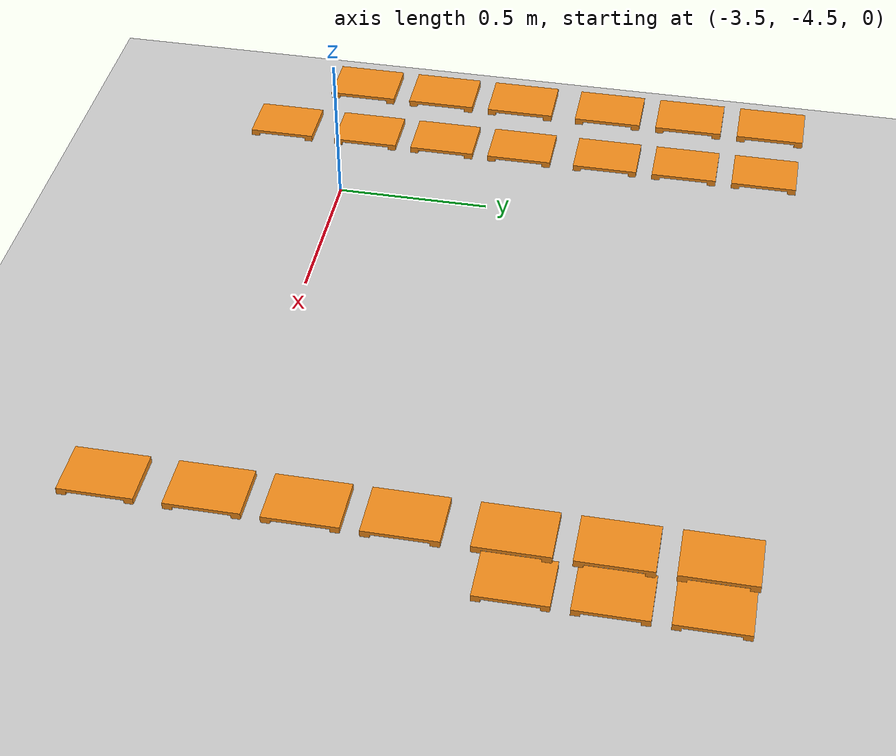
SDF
<sdf version="1.7">
 <world name="default">
  <model name="ground_plane">
   <static>1</static>
   <link name="link">
    <collision name="collision">
     <geometry><plane><normal>0 0 1</normal><size>100 100</size></plane></geometry>
     <surface>
      <contact><collide_bitmask>65535</collide_bitmask></contact>
      <friction><ode><mu>1</mu><mu2>1</mu2></ode></friction>
     </surface>
    </collision>
    <visual name="visual">
     <cast_shadows>0</cast_shadows>
     <geometry><plane><normal>0 0 1</normal><size>100 100</size></plane></geometry>
     <material>
      <script><uri>file://media/materials/scripts/gazebo.material</uri><name>Gazebo/Grey</name></script>
     </material>
    </visual>
   </link>
  </model>
  <model name="pallet_97">
   <pose>-3.39642 -3.088 0.511025 0 -0.012521 -3e-06</pose>
   <link name="link">
    <inertial>
     <pose>0 0 0 0 -0 1.571</pose>
     <inertia>
      <ixx>0.00220983</ixx>
      <ixy>0</ixy>
      <ixz>0</ixz>
      <iyy>0.00128087</iyy>
      <iyz>0</iyz>
      <izz>0.00244903</izz>
     </inertia>
     <mass>0.01</mass>
    </inertial>
    <visual name="visual1">
     <cast_shadows>0</cast_shadows>
     <geometry><mesh><uri>model://pallet/meshes/pallet.stl</uri></mesh></geometry>
     <material>
      <script><uri>file://media/materials/scripts/gazebo.material</uri><name>Gazebo/Orange</name></script>
      <shader type="pixel"><normal_map>__default__</normal_map></shader>
      <emissive>0 0 0 1</emissive>
     </material>
     <pose>0 0 -0 0 -0 1.571</pose>
    </visual>
    <collision name="collision_0">
     <pose>0 0 0 0 -0 1.571</pose>
     <geometry><mesh><uri>model://pallet/meshes/pallet.stl</uri></mesh></geometry>
     <surface>
      <friction>
       <ode><mu>1</mu><mu2>1</mu2><fdir1>0 0 0</fdir1><slip1>0</slip1><slip2>0</slip2></ode>
       <torsional>
        <coefficient>1</coefficient>
        <patch_radius>0</patch_radius>
        <surface_radius>0</surface_radius>
        <use_patch_radius>1</use_patch_radius>
        <ode><slip>0</slip></ode>
       </torsional>
      </friction>
      <bounce><restitution_coefficient>0</restitution_coefficient><threshold>1e+06</threshold></bounce>
      <contact>
       <collide_without_contact>0</collide_without_contact>
       <collide_without_contact_bitmask>1</collide_without_contact_bitmask>
       <collide_bitmask>1</collide_bitmask>
       <ode>
        <soft_cfm>0</soft_cfm>
        <soft_erp>0.2</soft_erp>
        <kp>1e+13</kp>
        <kd>1</kd>
        <max_vel>0.01</max_vel>
        <min_depth>0</min_depth>
       </ode>
       <bullet>
        <split_impulse>1</split_impulse>
        <split_impulse_penetration_threshold>-0.01</split_impulse_penetration_threshold>
        <soft_cfm>0</soft_cfm>
        <soft_erp>0.2</soft_erp>
        <kp>1e+13</kp>
        <kd>1</kd>
       </bullet>
      </contact>
     </surface>
    </collision>
   </link>
   <static>0</static>
  </model>
  <model name="pallet_98">
   <pose>-3.39642 -3.338 0.511021 4.2e-05 -0.012513 3e-06</pose>
   <link name="link">
    <inertial>
     <pose>0 0 0 0 -0 1.571</pose>
     <inertia>
      <ixx>0.00220983</ixx>
      <ixy>0</ixy>
      <ixz>0</ixz>
      <iyy>0.00128087</iyy>
      <iyz>0</iyz>
      <izz>0.00244903</izz>
     </inertia>
     <mass>0.01</mass>
    </inertial>
    <visual name="visual1">
     <cast_shadows>0</cast_shadows>
     <geometry><mesh><uri>model://pallet/meshes/pallet.stl</uri></mesh></geometry>
     <material>
      <script><uri>file://media/materials/scripts/gazebo.material</uri><name>Gazebo/Orange</name></script>
      <shader type="pixel"><normal_map>__default__</normal_map></shader>
      <emissive>0 0 0 1</emissive>
     </material>
     <pose>0 0 -0 0 -0 1.571</pose>
    </visual>
    <collision name="collision_0">
     <pose>0 0 0 0 -0 1.571</pose>
     <geometry><mesh><uri>model://pallet/meshes/pallet.stl</uri></mesh></geometry>
     <surface>
      <friction>
       <ode><mu>1</mu><mu2>1</mu2><fdir1>0 0 0</fdir1><slip1>0</slip1><slip2>0</slip2></ode>
       <torsional>
        <coefficient>1</coefficient>
        <patch_radius>0</patch_radius>
        <surface_radius>0</surface_radius>
        <use_patch_radius>1</use_patch_radius>
        <ode><slip>0</slip></ode>
       </torsional>
      </friction>
      <bounce><restitution_coefficient>0</restitution_coefficient><threshold>1e+06</threshold></bounce>
      <contact>
       <collide_without_contact>0</collide_without_contact>
       <collide_without_contact_bitmask>1</collide_without_contact_bitmask>
       <collide_bitmask>1</collide_bitmask>
       <ode>
        <soft_cfm>0</soft_cfm>
        <soft_erp>0.2</soft_erp>
        <kp>1e+13</kp>
        <kd>1</kd>
        <max_vel>0.01</max_vel>
        <min_depth>0</min_depth>
       </ode>
       <bullet>
        <split_impulse>1</split_impulse>
        <split_impulse_penetration_threshold>-0.01</split_impulse_penetration_threshold>
        <soft_cfm>0</soft_cfm>
        <soft_erp>0.2</soft_erp>
        <kp>1e+13</kp>
        <kd>1</kd>
       </bullet>
      </contact>
     </surface>
    </collision>
   </link>
   <static>0</static>
  </model>
  <model name="pallet_99">
   <pose>-3.39642 -3.588 0.51102 4.3e-05 -0.012511 3e-06</pose>
   <link name="link">
    <inertial>
     <pose>0 0 0 0 -0 1.571</pose>
     <inertia>
      <ixx>0.00220983</ixx>
      <ixy>0</ixy>
      <ixz>0</ixz>
      <iyy>0.00128087</iyy>
      <iyz>0</iyz>
      <izz>0.00244903</izz>
     </inertia>
     <mass>0.01</mass>
    </inertial>
    <visual name="visual1">
     <cast_shadows>0</cast_shadows>
     <geometry><mesh><uri>model://pallet/meshes/pallet.stl</uri></mesh></geometry>
     <material>
      <script><uri>file://media/materials/scripts/gazebo.material</uri><name>Gazebo/Orange</name></script>
      <shader type="pixel"><normal_map>__default__</normal_map></shader>
      <emissive>0 0 0 1</emissive>
     </material>
     <pose>0 0 -0 0 -0 1.571</pose>
    </visual>
    <collision name="collision_0">
     <pose>0 0 0 0 -0 1.571</pose>
     <geometry><mesh><uri>model://pallet/meshes/pallet.stl</uri></mesh></geometry>
     <surface>
      <friction>
       <ode><mu>1</mu><mu2>1</mu2><fdir1>0 0 0</fdir1><slip1>0</slip1><slip2>0</slip2></ode>
       <torsional>
        <coefficient>1</coefficient>
        <patch_radius>0</patch_radius>
        <surface_radius>0</surface_radius>
        <use_patch_radius>1</use_patch_radius>
        <ode><slip>0</slip></ode>
       </torsional>
      </friction>
      <bounce><restitution_coefficient>0</restitution_coefficient><threshold>1e+06</threshold></bounce>
      <contact>
       <collide_without_contact>0</collide_without_contact>
       <collide_without_contact_bitmask>1</collide_without_contact_bitmask>
       <collide_bitmask>1</collide_bitmask>
       <ode>
        <soft_cfm>0</soft_cfm>
        <soft_erp>0.2</soft_erp>
        <kp>1e+13</kp>
        <kd>1</kd>
        <max_vel>0.01</max_vel>
        <min_depth>0</min_depth>
       </ode>
       <bullet>
        <split_impulse>1</split_impulse>
        <split_impulse_penetration_threshold>-0.01</split_impulse_penetration_threshold>
        <soft_cfm>0</soft_cfm>
        <soft_erp>0.2</soft_erp>
        <kp>1e+13</kp>
        <kd>1</kd>
       </bullet>
      </contact>
     </surface>
    </collision>
   </link>
   <static>0</static>
  </model>
  <model name="pallet_100">
   <pose>-3.39642 -3.8625 0.511023 1e-06 -0.01252 4e-06</pose>
   <link name="link">
    <inertial>
     <pose>0 0 0 0 -0 1.571</pose>
     <inertia>
      <ixx>0.00220983</ixx>
      <ixy>0</ixy>
      <ixz>0</ixz>
      <iyy>0.00128087</iyy>
      <iyz>0</iyz>
      <izz>0.00244903</izz>
     </inertia>
     <mass>0.01</mass>
    </inertial>
    <visual name="visual1">
     <cast_shadows>0</cast_shadows>
     <geometry><mesh><uri>model://pallet/meshes/pallet.stl</uri></mesh></geometry>
     <material>
      <script><uri>file://media/materials/scripts/gazebo.material</uri><name>Gazebo/Orange</name></script>
      <shader type="pixel"><normal_map>__default__</normal_map></shader>
      <emissive>0 0 0 1</emissive>
     </material>
     <pose>0 0 -0 0 -0 1.571</pose>
    </visual>
    <collision name="collision_0">
     <pose>0 0 0 0 -0 1.571</pose>
     <geometry><mesh><uri>model://pallet/meshes/pallet.stl</uri></mesh></geometry>
     <surface>
      <friction>
       <ode><mu>1</mu><mu2>1</mu2><fdir1>0 0 0</fdir1><slip1>0</slip1><slip2>0</slip2></ode>
       <torsional>
        <coefficient>1</coefficient>
        <patch_radius>0</patch_radius>
        <surface_radius>0</surface_radius>
        <use_patch_radius>1</use_patch_radius>
        <ode><slip>0</slip></ode>
       </torsional>
      </friction>
      <bounce><restitution_coefficient>0</restitution_coefficient><threshold>1e+06</threshold></bounce>
      <contact>
       <collide_without_contact>0</collide_without_contact>
       <collide_without_contact_bitmask>1</collide_without_contact_bitmask>
       <collide_bitmask>1</collide_bitmask>
       <ode>
        <soft_cfm>0</soft_cfm>
        <soft_erp>0.2</soft_erp>
        <kp>1e+13</kp>
        <kd>1</kd>
        <max_vel>0.01</max_vel>
        <min_depth>0</min_depth>
       </ode>
       <bullet>
        <split_impulse>1</split_impulse>
        <split_impulse_penetration_threshold>-0.01</split_impulse_penetration_threshold>
        <soft_cfm>0</soft_cfm>
        <soft_erp>0.2</soft_erp>
        <kp>1e+13</kp>
        <kd>1</kd>
       </bullet>
      </contact>
     </surface>
    </collision>
   </link>
   <static>0</static>
  </model>
  <model name="pallet_101">
   <pose>-3.39642 -4.1125 0.51102 3e-05 -0.012513 2e-06</pose>
   <link name="link">
    <inertial>
     <pose>0 0 0 0 -0 1.571</pose>
     <inertia>
      <ixx>0.00220983</ixx>
      <ixy>0</ixy>
      <ixz>0</ixz>
      <iyy>0.00128087</iyy>
      <iyz>0</iyz>
      <izz>0.00244903</izz>
     </inertia>
     <mass>0.01</mass>
    </inertial>
    <visual name="visual1">
     <cast_shadows>0</cast_shadows>
     <geometry><mesh><uri>model://pallet/meshes/pallet.stl</uri></mesh></geometry>
     <material>
      <script><uri>file://media/materials/scripts/gazebo.material</uri><name>Gazebo/Orange</name></script>
      <shader type="pixel"><normal_map>__default__</normal_map></shader>
      <emissive>0 0 0 1</emissive>
     </material>
     <pose>0 0 -0 0 -0 1.571</pose>
    </visual>
    <collision name="collision_0">
     <pose>0 0 0 0 -0 1.571</pose>
     <geometry><mesh><uri>model://pallet/meshes/pallet.stl</uri></mesh></geometry>
     <surface>
      <friction>
       <ode><mu>1</mu><mu2>1</mu2><fdir1>0 0 0</fdir1><slip1>0</slip1><slip2>0</slip2></ode>
       <torsional>
        <coefficient>1</coefficient>
        <patch_radius>0</patch_radius>
        <surface_radius>0</surface_radius>
        <use_patch_radius>1</use_patch_radius>
        <ode><slip>0</slip></ode>
       </torsional>
      </friction>
      <bounce><restitution_coefficient>0</restitution_coefficient><threshold>1e+06</threshold></bounce>
      <contact>
       <collide_without_contact>0</collide_without_contact>
       <collide_without_contact_bitmask>1</collide_without_contact_bitmask>
       <collide_bitmask>1</collide_bitmask>
       <ode>
        <soft_cfm>0</soft_cfm>
        <soft_erp>0.2</soft_erp>
        <kp>1e+13</kp>
        <kd>1</kd>
        <max_vel>0.01</max_vel>
        <min_depth>0</min_depth>
       </ode>
       <bullet>
        <split_impulse>1</split_impulse>
        <split_impulse_penetration_threshold>-0.01</split_impulse_penetration_threshold>
        <soft_cfm>0</soft_cfm>
        <soft_erp>0.2</soft_erp>
        <kp>1e+13</kp>
        <kd>1</kd>
       </bullet>
      </contact>
     </surface>
    </collision>
   </link>
   <static>0</static>
  </model>
  <model name="pallet_102">
   <pose>-3.39641 -4.3625 0.51102 2.3e-05 -0.012514 1e-05</pose>
   <link name="link">
    <inertial>
     <pose>0 0 0 0 -0 1.571</pose>
     <inertia>
      <ixx>0.00220983</ixx>
      <ixy>0</ixy>
      <ixz>0</ixz>
      <iyy>0.00128087</iyy>
      <iyz>0</iyz>
      <izz>0.00244903</izz>
     </inertia>
     <mass>0.01</mass>
    </inertial>
    <visual name="visual1">
     <cast_shadows>0</cast_shadows>
     <geometry><mesh><uri>model://pallet/meshes/pallet.stl</uri></mesh></geometry>
     <material>
      <script><uri>file://media/materials/scripts/gazebo.material</uri><name>Gazebo/Orange</name></script>
      <shader type="pixel"><normal_map>__default__</normal_map></shader>
      <emissive>0 0 0 1</emissive>
     </material>
     <pose>0 0 -0 0 -0 1.571</pose>
    </visual>
    <collision name="collision_0">
     <pose>0 0 0 0 -0 1.571</pose>
     <geometry><mesh><uri>model://pallet/meshes/pallet.stl</uri></mesh></geometry>
     <surface>
      <friction>
       <ode><mu>1</mu><mu2>1</mu2><fdir1>0 0 0</fdir1><slip1>0</slip1><slip2>0</slip2></ode>
       <torsional>
        <coefficient>1</coefficient>
        <patch_radius>0</patch_radius>
        <surface_radius>0</surface_radius>
        <use_patch_radius>1</use_patch_radius>
        <ode><slip>0</slip></ode>
       </torsional>
      </friction>
      <bounce><restitution_coefficient>0</restitution_coefficient><threshold>1e+06</threshold></bounce>
      <contact>
       <collide_without_contact>0</collide_without_contact>
       <collide_without_contact_bitmask>1</collide_without_contact_bitmask>
       <collide_bitmask>1</collide_bitmask>
       <ode>
        <soft_cfm>0</soft_cfm>
        <soft_erp>0.2</soft_erp>
        <kp>1e+13</kp>
        <kd>1</kd>
        <max_vel>0.01</max_vel>
        <min_depth>0</min_depth>
       </ode>
       <bullet>
        <split_impulse>1</split_impulse>
        <split_impulse_penetration_threshold>-0.01</split_impulse_penetration_threshold>
        <soft_cfm>0</soft_cfm>
        <soft_erp>0.2</soft_erp>
        <kp>1e+13</kp>
        <kd>1</kd>
       </bullet>
      </contact>
     </surface>
    </collision>
   </link>
   <static>0</static>
  </model>
  <model name="pallet_109">
   <pose>-3.39417 -3.088 0.331038 4e-06 -0.012516 -3e-06</pose>
   <link name="link">
    <inertial>
     <pose>0 0 0 0 -0 1.571</pose>
     <inertia>
      <ixx>0.00220983</ixx>
      <ixy>0</ixy>
      <ixz>0</ixz>
      <iyy>0.00128087</iyy>
      <iyz>0</iyz>
      <izz>0.00244903</izz>
     </inertia>
     <mass>0.01</mass>
    </inertial>
    <visual name="visual1">
     <cast_shadows>0</cast_shadows>
     <geometry><mesh><uri>model://pallet/meshes/pallet.stl</uri></mesh></geometry>
     <material>
      <script><uri>file://media/materials/scripts/gazebo.material</uri><name>Gazebo/Orange</name></script>
      <shader type="pixel"><normal_map>__default__</normal_map></shader>
      <emissive>0 0 0 1</emissive>
     </material>
     <pose>0 0 -0 0 -0 1.571</pose>
    </visual>
    <collision name="collision_0">
     <pose>0 0 0 0 -0 1.571</pose>
     <geometry><mesh><uri>model://pallet/meshes/pallet.stl</uri></mesh></geometry>
     <surface>
      <friction>
       <ode><mu>1</mu><mu2>1</mu2><fdir1>0 0 0</fdir1><slip1>0</slip1><slip2>0</slip2></ode>
       <torsional>
        <coefficient>1</coefficient>
        <patch_radius>0</patch_radius>
        <surface_radius>0</surface_radius>
        <use_patch_radius>1</use_patch_radius>
        <ode><slip>0</slip></ode>
       </torsional>
      </friction>
      <bounce><restitution_coefficient>0</restitution_coefficient><threshold>1e+06</threshold></bounce>
      <contact>
       <collide_without_contact>0</collide_without_contact>
       <collide_without_contact_bitmask>1</collide_without_contact_bitmask>
       <collide_bitmask>1</collide_bitmask>
       <ode>
        <soft_cfm>0</soft_cfm>
        <soft_erp>0.2</soft_erp>
        <kp>1e+13</kp>
        <kd>1</kd>
        <max_vel>0.01</max_vel>
        <min_depth>0</min_depth>
       </ode>
       <bullet>
        <split_impulse>1</split_impulse>
        <split_impulse_penetration_threshold>-0.01</split_impulse_penetration_threshold>
        <soft_cfm>0</soft_cfm>
        <soft_erp>0.2</soft_erp>
        <kp>1e+13</kp>
        <kd>1</kd>
       </bullet>
      </contact>
     </surface>
    </collision>
   </link>
   <static>0</static>
  </model>
  <model name="pallet_110">
   <pose>-3.39417 -3.338 0.331035 4.3e-05 -0.012514 5e-06</pose>
   <link name="link">
    <inertial>
     <pose>0 0 0 0 -0 1.571</pose>
     <inertia>
      <ixx>0.00220983</ixx>
      <ixy>0</ixy>
      <ixz>0</ixz>
      <iyy>0.00128087</iyy>
      <iyz>0</iyz>
      <izz>0.00244903</izz>
     </inertia>
     <mass>0.01</mass>
    </inertial>
    <visual name="visual1">
     <cast_shadows>0</cast_shadows>
     <geometry><mesh><uri>model://pallet/meshes/pallet.stl</uri></mesh></geometry>
     <material>
      <script><uri>file://media/materials/scripts/gazebo.material</uri><name>Gazebo/Orange</name></script>
      <shader type="pixel"><normal_map>__default__</normal_map></shader>
      <emissive>0 0 0 1</emissive>
     </material>
     <pose>0 0 -0 0 -0 1.571</pose>
    </visual>
    <collision name="collision_0">
     <pose>0 0 0 0 -0 1.571</pose>
     <geometry><mesh><uri>model://pallet/meshes/pallet.stl</uri></mesh></geometry>
     <surface>
      <friction>
       <ode><mu>1</mu><mu2>1</mu2><fdir1>0 0 0</fdir1><slip1>0</slip1><slip2>0</slip2></ode>
       <torsional>
        <coefficient>1</coefficient>
        <patch_radius>0</patch_radius>
        <surface_radius>0</surface_radius>
        <use_patch_radius>1</use_patch_radius>
        <ode><slip>0</slip></ode>
       </torsional>
      </friction>
      <bounce><restitution_coefficient>0</restitution_coefficient><threshold>1e+06</threshold></bounce>
      <contact>
       <collide_without_contact>0</collide_without_contact>
       <collide_without_contact_bitmask>1</collide_without_contact_bitmask>
       <collide_bitmask>1</collide_bitmask>
       <ode>
        <soft_cfm>0</soft_cfm>
        <soft_erp>0.2</soft_erp>
        <kp>1e+13</kp>
        <kd>1</kd>
        <max_vel>0.01</max_vel>
        <min_depth>0</min_depth>
       </ode>
       <bullet>
        <split_impulse>1</split_impulse>
        <split_impulse_penetration_threshold>-0.01</split_impulse_penetration_threshold>
        <soft_cfm>0</soft_cfm>
        <soft_erp>0.2</soft_erp>
        <kp>1e+13</kp>
        <kd>1</kd>
       </bullet>
      </contact>
     </surface>
    </collision>
   </link>
   <static>0</static>
  </model>
  <model name="pallet_111">
   <pose>-3.39417 -3.588 0.331033 4.5e-05 -0.012512 4e-06</pose>
   <link name="link">
    <inertial>
     <pose>0 0 0 0 -0 1.571</pose>
     <inertia>
      <ixx>0.00220983</ixx>
      <ixy>0</ixy>
      <ixz>0</ixz>
      <iyy>0.00128087</iyy>
      <iyz>0</iyz>
      <izz>0.00244903</izz>
     </inertia>
     <mass>0.01</mass>
    </inertial>
    <visual name="visual1">
     <cast_shadows>0</cast_shadows>
     <geometry><mesh><uri>model://pallet/meshes/pallet.stl</uri></mesh></geometry>
     <material>
      <script><uri>file://media/materials/scripts/gazebo.material</uri><name>Gazebo/Orange</name></script>
      <shader type="pixel"><normal_map>__default__</normal_map></shader>
      <emissive>0 0 0 1</emissive>
     </material>
     <pose>0 0 -0 0 -0 1.571</pose>
    </visual>
    <collision name="collision_0">
     <pose>0 0 0 0 -0 1.571</pose>
     <geometry><mesh><uri>model://pallet/meshes/pallet.stl</uri></mesh></geometry>
     <surface>
      <friction>
       <ode><mu>1</mu><mu2>1</mu2><fdir1>0 0 0</fdir1><slip1>0</slip1><slip2>0</slip2></ode>
       <torsional>
        <coefficient>1</coefficient>
        <patch_radius>0</patch_radius>
        <surface_radius>0</surface_radius>
        <use_patch_radius>1</use_patch_radius>
        <ode><slip>0</slip></ode>
       </torsional>
      </friction>
      <bounce><restitution_coefficient>0</restitution_coefficient><threshold>1e+06</threshold></bounce>
      <contact>
       <collide_without_contact>0</collide_without_contact>
       <collide_without_contact_bitmask>1</collide_without_contact_bitmask>
       <collide_bitmask>1</collide_bitmask>
       <ode>
        <soft_cfm>0</soft_cfm>
        <soft_erp>0.2</soft_erp>
        <kp>1e+13</kp>
        <kd>1</kd>
        <max_vel>0.01</max_vel>
        <min_depth>0</min_depth>
       </ode>
       <bullet>
        <split_impulse>1</split_impulse>
        <split_impulse_penetration_threshold>-0.01</split_impulse_penetration_threshold>
        <soft_cfm>0</soft_cfm>
        <soft_erp>0.2</soft_erp>
        <kp>1e+13</kp>
        <kd>1</kd>
       </bullet>
      </contact>
     </surface>
    </collision>
   </link>
   <static>0</static>
  </model>
  <model name="pallet_112">
   <pose>-3.39417 -3.8625 0.331037 7e-06 -0.012521 4e-06</pose>
   <link name="link">
    <inertial>
     <pose>0 0 0 0 -0 1.571</pose>
     <inertia>
      <ixx>0.00220983</ixx>
      <ixy>0</ixy>
      <ixz>0</ixz>
      <iyy>0.00128087</iyy>
      <iyz>0</iyz>
      <izz>0.00244903</izz>
     </inertia>
     <mass>0.01</mass>
    </inertial>
    <visual name="visual1">
     <cast_shadows>0</cast_shadows>
     <geometry><mesh><uri>model://pallet/meshes/pallet.stl</uri></mesh></geometry>
     <material>
      <script><uri>file://media/materials/scripts/gazebo.material</uri><name>Gazebo/Orange</name></script>
      <shader type="pixel"><normal_map>__default__</normal_map></shader>
      <emissive>0 0 0 1</emissive>
     </material>
     <pose>0 0 -0 0 -0 1.571</pose>
    </visual>
    <collision name="collision_0">
     <pose>0 0 0 0 -0 1.571</pose>
     <geometry><mesh><uri>model://pallet/meshes/pallet.stl</uri></mesh></geometry>
     <surface>
      <friction>
       <ode><mu>1</mu><mu2>1</mu2><fdir1>0 0 0</fdir1><slip1>0</slip1><slip2>0</slip2></ode>
       <torsional>
        <coefficient>1</coefficient>
        <patch_radius>0</patch_radius>
        <surface_radius>0</surface_radius>
        <use_patch_radius>1</use_patch_radius>
        <ode><slip>0</slip></ode>
       </torsional>
      </friction>
      <bounce><restitution_coefficient>0</restitution_coefficient><threshold>1e+06</threshold></bounce>
      <contact>
       <collide_without_contact>0</collide_without_contact>
       <collide_without_contact_bitmask>1</collide_without_contact_bitmask>
       <collide_bitmask>1</collide_bitmask>
       <ode>
        <soft_cfm>0</soft_cfm>
        <soft_erp>0.2</soft_erp>
        <kp>1e+13</kp>
        <kd>1</kd>
        <max_vel>0.01</max_vel>
        <min_depth>0</min_depth>
       </ode>
       <bullet>
        <split_impulse>1</split_impulse>
        <split_impulse_penetration_threshold>-0.01</split_impulse_penetration_threshold>
        <soft_cfm>0</soft_cfm>
        <soft_erp>0.2</soft_erp>
        <kp>1e+13</kp>
        <kd>1</kd>
       </bullet>
      </contact>
     </surface>
    </collision>
   </link>
   <static>0</static>
  </model>
  <model name="pallet_113">
   <pose>-3.39416 -4.1125 0.331034 2.6e-05 -0.012514 7e-06</pose>
   <link name="link">
    <inertial>
     <pose>0 0 0 0 -0 1.571</pose>
     <inertia>
      <ixx>0.00220983</ixx>
      <ixy>0</ixy>
      <ixz>0</ixz>
      <iyy>0.00128087</iyy>
      <iyz>0</iyz>
      <izz>0.00244903</izz>
     </inertia>
     <mass>0.01</mass>
    </inertial>
    <visual name="visual1">
     <cast_shadows>0</cast_shadows>
     <geometry><mesh><uri>model://pallet/meshes/pallet.stl</uri></mesh></geometry>
     <material>
      <script><uri>file://media/materials/scripts/gazebo.material</uri><name>Gazebo/Orange</name></script>
      <shader type="pixel"><normal_map>__default__</normal_map></shader>
      <emissive>0 0 0 1</emissive>
     </material>
     <pose>0 0 -0 0 -0 1.571</pose>
    </visual>
    <collision name="collision_0">
     <pose>0 0 0 0 -0 1.571</pose>
     <geometry><mesh><uri>model://pallet/meshes/pallet.stl</uri></mesh></geometry>
     <surface>
      <friction>
       <ode><mu>1</mu><mu2>1</mu2><fdir1>0 0 0</fdir1><slip1>0</slip1><slip2>0</slip2></ode>
       <torsional>
        <coefficient>1</coefficient>
        <patch_radius>0</patch_radius>
        <surface_radius>0</surface_radius>
        <use_patch_radius>1</use_patch_radius>
        <ode><slip>0</slip></ode>
       </torsional>
      </friction>
      <bounce><restitution_coefficient>0</restitution_coefficient><threshold>1e+06</threshold></bounce>
      <contact>
       <collide_without_contact>0</collide_without_contact>
       <collide_without_contact_bitmask>1</collide_without_contact_bitmask>
       <collide_bitmask>1</collide_bitmask>
       <ode>
        <soft_cfm>0</soft_cfm>
        <soft_erp>0.2</soft_erp>
        <kp>1e+13</kp>
        <kd>1</kd>
        <max_vel>0.01</max_vel>
        <min_depth>0</min_depth>
       </ode>
       <bullet>
        <split_impulse>1</split_impulse>
        <split_impulse_penetration_threshold>-0.01</split_impulse_penetration_threshold>
        <soft_cfm>0</soft_cfm>
        <soft_erp>0.2</soft_erp>
        <kp>1e+13</kp>
        <kd>1</kd>
       </bullet>
      </contact>
     </surface>
    </collision>
   </link>
   <static>0</static>
  </model>
  <model name="pallet_114">
   <pose>-3.39416 -4.3625 0.331033 2.3e-05 -0.012514 8e-06</pose>
   <link name="link">
    <inertial>
     <pose>0 0 0 0 -0 1.571</pose>
     <inertia>
      <ixx>0.00220983</ixx>
      <ixy>0</ixy>
      <ixz>0</ixz>
      <iyy>0.00128087</iyy>
      <iyz>0</iyz>
      <izz>0.00244903</izz>
     </inertia>
     <mass>0.01</mass>
    </inertial>
    <visual name="visual1">
     <cast_shadows>0</cast_shadows>
     <geometry><mesh><uri>model://pallet/meshes/pallet.stl</uri></mesh></geometry>
     <material>
      <script><uri>file://media/materials/scripts/gazebo.material</uri><name>Gazebo/Orange</name></script>
      <shader type="pixel"><normal_map>__default__</normal_map></shader>
      <emissive>0 0 0 1</emissive>
     </material>
     <pose>0 0 -0 0 -0 1.571</pose>
    </visual>
    <collision name="collision_0">
     <pose>0 0 0 0 -0 1.571</pose>
     <geometry><mesh><uri>model://pallet/meshes/pallet.stl</uri></mesh></geometry>
     <surface>
      <friction>
       <ode><mu>1</mu><mu2>1</mu2><fdir1>0 0 0</fdir1><slip1>0</slip1><slip2>0</slip2></ode>
       <torsional>
        <coefficient>1</coefficient>
        <patch_radius>0</patch_radius>
        <surface_radius>0</surface_radius>
        <use_patch_radius>1</use_patch_radius>
        <ode><slip>0</slip></ode>
       </torsional>
      </friction>
      <bounce><restitution_coefficient>0</restitution_coefficient><threshold>1e+06</threshold></bounce>
      <contact>
       <collide_without_contact>0</collide_without_contact>
       <collide_without_contact_bitmask>1</collide_without_contact_bitmask>
       <collide_bitmask>1</collide_bitmask>
       <ode>
        <soft_cfm>0</soft_cfm>
        <soft_erp>0.2</soft_erp>
        <kp>1e+13</kp>
        <kd>1</kd>
        <max_vel>0.01</max_vel>
        <min_depth>0</min_depth>
       </ode>
       <bullet>
        <split_impulse>1</split_impulse>
        <split_impulse_penetration_threshold>-0.01</split_impulse_penetration_threshold>
        <soft_cfm>0</soft_cfm>
        <soft_erp>0.2</soft_erp>
        <kp>1e+13</kp>
        <kd>1</kd>
       </bullet>
      </contact>
     </surface>
    </collision>
   </link>
   <static>0</static>
  </model>
  <model name="pallet_116">
   <pose>-3.39416 -4.637 0.331033 2.1e-05 -0.012514 7e-06</pose>
   <link name="link">
    <inertial>
     <pose>0 0 0 0 -0 1.571</pose>
     <inertia>
      <ixx>0.00220983</ixx>
      <ixy>0</ixy>
      <ixz>0</ixz>
      <iyy>0.00128087</iyy>
      <iyz>0</iyz>
      <izz>0.00244903</izz>
     </inertia>
     <mass>0.01</mass>
    </inertial>
    <visual name="visual1">
     <cast_shadows>0</cast_shadows>
     <geometry><mesh><uri>model://pallet/meshes/pallet.stl</uri></mesh></geometry>
     <material>
      <script><uri>file://media/materials/scripts/gazebo.material</uri><name>Gazebo/Orange</name></script>
      <shader type="pixel"><normal_map>__default__</normal_map></shader>
      <emissive>0 0 0 1</emissive>
     </material>
     <pose>0 0 -0 0 -0 1.571</pose>
    </visual>
    <collision name="collision_0">
     <pose>0 0 0 0 -0 1.571</pose>
     <geometry><mesh><uri>model://pallet/meshes/pallet.stl</uri></mesh></geometry>
     <surface>
      <friction>
       <ode><mu>1</mu><mu2>1</mu2><fdir1>0 0 0</fdir1><slip1>0</slip1><slip2>0</slip2></ode>
       <torsional>
        <coefficient>1</coefficient>
        <patch_radius>0</patch_radius>
        <surface_radius>0</surface_radius>
        <use_patch_radius>1</use_patch_radius>
        <ode><slip>0</slip></ode>
       </torsional>
      </friction>
      <bounce><restitution_coefficient>0</restitution_coefficient><threshold>1e+06</threshold></bounce>
      <contact>
       <collide_without_contact>0</collide_without_contact>
       <collide_without_contact_bitmask>1</collide_without_contact_bitmask>
       <collide_bitmask>1</collide_bitmask>
       <ode>
        <soft_cfm>0</soft_cfm>
        <soft_erp>0.2</soft_erp>
        <kp>1e+13</kp>
        <kd>1</kd>
        <max_vel>0.01</max_vel>
        <min_depth>0</min_depth>
       </ode>
       <bullet>
        <split_impulse>1</split_impulse>
        <split_impulse_penetration_threshold>-0.01</split_impulse_penetration_threshold>
        <soft_cfm>0</soft_cfm>
        <soft_erp>0.2</soft_erp>
        <kp>1e+13</kp>
        <kd>1</kd>
       </bullet>
      </contact>
     </surface>
    </collision>
   </link>
   <static>0</static>
  </model>
  <model name="pallet_121">
   <pose>-1.61447 -3.088 0.33096 4e-06 -0.013423 -3e-06</pose>
   <link name="link">
    <inertial>
     <pose>0 0 0 0 -0 1.571</pose>
     <inertia>
      <ixx>0.00220983</ixx>
      <ixy>0</ixy>
      <ixz>0</ixz>
      <iyy>0.00128087</iyy>
      <iyz>0</iyz>
      <izz>0.00244903</izz>
     </inertia>
     <mass>0.01</mass>
    </inertial>
    <visual name="visual1">
     <cast_shadows>0</cast_shadows>
     <geometry><mesh><uri>model://pallet/meshes/pallet.stl</uri></mesh></geometry>
     <material>
      <script><uri>file://media/materials/scripts/gazebo.material</uri><name>Gazebo/Orange</name></script>
      <shader type="pixel"><normal_map>__default__</normal_map></shader>
      <emissive>0 0 0 1</emissive>
     </material>
     <pose>0 0 -0 0 -0 1.571</pose>
    </visual>
    <collision name="collision_0">
     <pose>0 0 0 0 -0 1.571</pose>
     <geometry><mesh><uri>model://pallet/meshes/pallet.stl</uri></mesh></geometry>
     <surface>
      <friction>
       <ode><mu>1</mu><mu2>1</mu2><fdir1>0 0 0</fdir1><slip1>0</slip1><slip2>0</slip2></ode>
       <torsional>
        <coefficient>1</coefficient>
        <patch_radius>0</patch_radius>
        <surface_radius>0</surface_radius>
        <use_patch_radius>1</use_patch_radius>
        <ode><slip>0</slip></ode>
       </torsional>
      </friction>
      <bounce><restitution_coefficient>0</restitution_coefficient><threshold>1e+06</threshold></bounce>
      <contact>
       <collide_without_contact>0</collide_without_contact>
       <collide_without_contact_bitmask>1</collide_without_contact_bitmask>
       <collide_bitmask>1</collide_bitmask>
       <ode>
        <soft_cfm>0</soft_cfm>
        <soft_erp>0.2</soft_erp>
        <kp>1e+13</kp>
        <kd>1</kd>
        <max_vel>0.01</max_vel>
        <min_depth>0</min_depth>
       </ode>
       <bullet>
        <split_impulse>1</split_impulse>
        <split_impulse_penetration_threshold>-0.01</split_impulse_penetration_threshold>
        <soft_cfm>0</soft_cfm>
        <soft_erp>0.2</soft_erp>
        <kp>1e+13</kp>
        <kd>1</kd>
       </bullet>
      </contact>
     </surface>
    </collision>
   </link>
   <static>0</static>
  </model>
  <model name="pallet_122">
   <pose>-1.61447 -3.338 0.330965 4.4e-05 -0.013418 6e-06</pose>
   <link name="link">
    <inertial>
     <pose>0 0 0 0 -0 1.571</pose>
     <inertia>
      <ixx>0.00220983</ixx>
      <ixy>0</ixy>
      <ixz>0</ixz>
      <iyy>0.00128087</iyy>
      <iyz>0</iyz>
      <izz>0.00244903</izz>
     </inertia>
     <mass>0.01</mass>
    </inertial>
    <visual name="visual1">
     <cast_shadows>0</cast_shadows>
     <geometry><mesh><uri>model://pallet/meshes/pallet.stl</uri></mesh></geometry>
     <material>
      <script><uri>file://media/materials/scripts/gazebo.material</uri><name>Gazebo/Orange</name></script>
      <shader type="pixel"><normal_map>__default__</normal_map></shader>
      <emissive>0 0 0 1</emissive>
     </material>
     <pose>0 0 -0 0 -0 1.571</pose>
    </visual>
    <collision name="collision_0">
     <pose>0 0 0 0 -0 1.571</pose>
     <geometry><mesh><uri>model://pallet/meshes/pallet.stl</uri></mesh></geometry>
     <surface>
      <friction>
       <ode><mu>1</mu><mu2>1</mu2><fdir1>0 0 0</fdir1><slip1>0</slip1><slip2>0</slip2></ode>
       <torsional>
        <coefficient>1</coefficient>
        <patch_radius>0</patch_radius>
        <surface_radius>0</surface_radius>
        <use_patch_radius>1</use_patch_radius>
        <ode><slip>0</slip></ode>
       </torsional>
      </friction>
      <bounce><restitution_coefficient>0</restitution_coefficient><threshold>1e+06</threshold></bounce>
      <contact>
       <collide_without_contact>0</collide_without_contact>
       <collide_without_contact_bitmask>1</collide_without_contact_bitmask>
       <collide_bitmask>1</collide_bitmask>
       <ode>
        <soft_cfm>0</soft_cfm>
        <soft_erp>0.2</soft_erp>
        <kp>1e+13</kp>
        <kd>1</kd>
        <max_vel>0.01</max_vel>
        <min_depth>0</min_depth>
       </ode>
       <bullet>
        <split_impulse>1</split_impulse>
        <split_impulse_penetration_threshold>-0.01</split_impulse_penetration_threshold>
        <soft_cfm>0</soft_cfm>
        <soft_erp>0.2</soft_erp>
        <kp>1e+13</kp>
        <kd>1</kd>
       </bullet>
      </contact>
     </surface>
    </collision>
   </link>
   <static>0</static>
  </model>
  <model name="pallet_123">
   <pose>-1.61447 -3.588 0.330963 3.8e-05 -0.013417 8e-06</pose>
   <link name="link">
    <inertial>
     <pose>0 0 0 0 -0 1.571</pose>
     <inertia>
      <ixx>0.00220983</ixx>
      <ixy>0</ixy>
      <ixz>0</ixz>
      <iyy>0.00128087</iyy>
      <iyz>0</iyz>
      <izz>0.00244903</izz>
     </inertia>
     <mass>0.01</mass>
    </inertial>
    <visual name="visual1">
     <cast_shadows>0</cast_shadows>
     <geometry><mesh><uri>model://pallet/meshes/pallet.stl</uri></mesh></geometry>
     <material>
      <script><uri>file://media/materials/scripts/gazebo.material</uri><name>Gazebo/Orange</name></script>
      <shader type="pixel"><normal_map>__default__</normal_map></shader>
      <emissive>0 0 0 1</emissive>
     </material>
     <pose>0 0 -0 0 -0 1.571</pose>
    </visual>
    <collision name="collision_0">
     <pose>0 0 0 0 -0 1.571</pose>
     <geometry><mesh><uri>model://pallet/meshes/pallet.stl</uri></mesh></geometry>
     <surface>
      <friction>
       <ode><mu>1</mu><mu2>1</mu2><fdir1>0 0 0</fdir1><slip1>0</slip1><slip2>0</slip2></ode>
       <torsional>
        <coefficient>1</coefficient>
        <patch_radius>0</patch_radius>
        <surface_radius>0</surface_radius>
        <use_patch_radius>1</use_patch_radius>
        <ode><slip>0</slip></ode>
       </torsional>
      </friction>
      <bounce><restitution_coefficient>0</restitution_coefficient><threshold>1e+06</threshold></bounce>
      <contact>
       <collide_without_contact>0</collide_without_contact>
       <collide_without_contact_bitmask>1</collide_without_contact_bitmask>
       <collide_bitmask>1</collide_bitmask>
       <ode>
        <soft_cfm>0</soft_cfm>
        <soft_erp>0.2</soft_erp>
        <kp>1e+13</kp>
        <kd>1</kd>
        <max_vel>0.01</max_vel>
        <min_depth>0</min_depth>
       </ode>
       <bullet>
        <split_impulse>1</split_impulse>
        <split_impulse_penetration_threshold>-0.01</split_impulse_penetration_threshold>
        <soft_cfm>0</soft_cfm>
        <soft_erp>0.2</soft_erp>
        <kp>1e+13</kp>
        <kd>1</kd>
       </bullet>
      </contact>
     </surface>
    </collision>
   </link>
   <static>0</static>
  </model>
  <model name="pallet_157">
   <pose>-1.61689 -3.088 0.510952 6e-06 -0.013426 -0</pose>
   <link name="link">
    <inertial>
     <pose>0 0 0 0 -0 1.571</pose>
     <inertia>
      <ixx>0.00220983</ixx>
      <ixy>0</ixy>
      <ixz>0</ixz>
      <iyy>0.00128087</iyy>
      <iyz>0</iyz>
      <izz>0.00244903</izz>
     </inertia>
     <mass>0.01</mass>
    </inertial>
    <visual name="visual1">
     <cast_shadows>0</cast_shadows>
     <geometry><mesh><uri>model://pallet/meshes/pallet.stl</uri></mesh></geometry>
     <material>
      <script><uri>file://media/materials/scripts/gazebo.material</uri><name>Gazebo/Orange</name></script>
      <shader type="pixel"><normal_map>__default__</normal_map></shader>
      <emissive>0 0 0 1</emissive>
     </material>
     <pose>0 0 -0 0 -0 1.571</pose>
    </visual>
    <collision name="collision_0">
     <pose>0 0 0 0 -0 1.571</pose>
     <geometry><mesh><uri>model://pallet/meshes/pallet.stl</uri></mesh></geometry>
     <surface>
      <friction>
       <ode><mu>1</mu><mu2>1</mu2><fdir1>0 0 0</fdir1><slip1>0</slip1><slip2>0</slip2></ode>
       <torsional>
        <coefficient>1</coefficient>
        <patch_radius>0</patch_radius>
        <surface_radius>0</surface_radius>
        <use_patch_radius>1</use_patch_radius>
        <ode><slip>0</slip></ode>
       </torsional>
      </friction>
      <bounce><restitution_coefficient>0</restitution_coefficient><threshold>1e+06</threshold></bounce>
      <contact>
       <collide_without_contact>0</collide_without_contact>
       <collide_without_contact_bitmask>1</collide_without_contact_bitmask>
       <collide_bitmask>1</collide_bitmask>
       <ode>
        <soft_cfm>0</soft_cfm>
        <soft_erp>0.2</soft_erp>
        <kp>1e+13</kp>
        <kd>1</kd>
        <max_vel>0.01</max_vel>
        <min_depth>0</min_depth>
       </ode>
       <bullet>
        <split_impulse>1</split_impulse>
        <split_impulse_penetration_threshold>-0.01</split_impulse_penetration_threshold>
        <soft_cfm>0</soft_cfm>
        <soft_erp>0.2</soft_erp>
        <kp>1e+13</kp>
        <kd>1</kd>
       </bullet>
      </contact>
     </surface>
    </collision>
   </link>
   <static>0</static>
  </model>
  <model name="pallet_158">
   <pose>-1.61689 -3.338 0.510948 4.4e-05 -0.013419 4e-06</pose>
   <link name="link">
    <inertial>
     <pose>0 0 0 0 -0 1.571</pose>
     <inertia>
      <ixx>0.00220983</ixx>
      <ixy>0</ixy>
      <ixz>0</ixz>
      <iyy>0.00128087</iyy>
      <iyz>0</iyz>
      <izz>0.00244903</izz>
     </inertia>
     <mass>0.01</mass>
    </inertial>
    <visual name="visual1">
     <cast_shadows>0</cast_shadows>
     <geometry><mesh><uri>model://pallet/meshes/pallet.stl</uri></mesh></geometry>
     <material>
      <script><uri>file://media/materials/scripts/gazebo.material</uri><name>Gazebo/Orange</name></script>
      <shader type="pixel"><normal_map>__default__</normal_map></shader>
      <emissive>0 0 0 1</emissive>
     </material>
     <pose>0 0 -0 0 -0 1.571</pose>
    </visual>
    <collision name="collision_0">
     <pose>0 0 0 0 -0 1.571</pose>
     <geometry><mesh><uri>model://pallet/meshes/pallet.stl</uri></mesh></geometry>
     <surface>
      <friction>
       <ode><mu>1</mu><mu2>1</mu2><fdir1>0 0 0</fdir1><slip1>0</slip1><slip2>0</slip2></ode>
       <torsional>
        <coefficient>1</coefficient>
        <patch_radius>0</patch_radius>
        <surface_radius>0</surface_radius>
        <use_patch_radius>1</use_patch_radius>
        <ode><slip>0</slip></ode>
       </torsional>
      </friction>
      <bounce><restitution_coefficient>0</restitution_coefficient><threshold>1e+06</threshold></bounce>
      <contact>
       <collide_without_contact>0</collide_without_contact>
       <collide_without_contact_bitmask>1</collide_without_contact_bitmask>
       <collide_bitmask>1</collide_bitmask>
       <ode>
        <soft_cfm>0</soft_cfm>
        <soft_erp>0.2</soft_erp>
        <kp>1e+13</kp>
        <kd>1</kd>
        <max_vel>0.01</max_vel>
        <min_depth>0</min_depth>
       </ode>
       <bullet>
        <split_impulse>1</split_impulse>
        <split_impulse_penetration_threshold>-0.01</split_impulse_penetration_threshold>
        <soft_cfm>0</soft_cfm>
        <soft_erp>0.2</soft_erp>
        <kp>1e+13</kp>
        <kd>1</kd>
       </bullet>
      </contact>
     </surface>
    </collision>
   </link>
   <static>0</static>
  </model>
  <model name="pallet_159">
   <pose>-1.61688 -3.588 0.510947 4.4e-05 -0.013418 8e-06</pose>
   <link name="link">
    <inertial>
     <pose>0 0 0 0 -0 1.571</pose>
     <inertia>
      <ixx>0.00220983</ixx>
      <ixy>0</ixy>
      <ixz>0</ixz>
      <iyy>0.00128087</iyy>
      <iyz>0</iyz>
      <izz>0.00244903</izz>
     </inertia>
     <mass>0.01</mass>
    </inertial>
    <visual name="visual1">
     <cast_shadows>0</cast_shadows>
     <geometry><mesh><uri>model://pallet/meshes/pallet.stl</uri></mesh></geometry>
     <material>
      <script><uri>file://media/materials/scripts/gazebo.material</uri><name>Gazebo/Orange</name></script>
      <shader type="pixel"><normal_map>__default__</normal_map></shader>
      <emissive>0 0 0 1</emissive>
     </material>
     <pose>0 0 -0 0 -0 1.571</pose>
    </visual>
    <collision name="collision_0">
     <pose>0 0 0 0 -0 1.571</pose>
     <geometry><mesh><uri>model://pallet/meshes/pallet.stl</uri></mesh></geometry>
     <surface>
      <friction>
       <ode><mu>1</mu><mu2>1</mu2><fdir1>0 0 0</fdir1><slip1>0</slip1><slip2>0</slip2></ode>
       <torsional>
        <coefficient>1</coefficient>
        <patch_radius>0</patch_radius>
        <surface_radius>0</surface_radius>
        <use_patch_radius>1</use_patch_radius>
        <ode><slip>0</slip></ode>
       </torsional>
      </friction>
      <bounce><restitution_coefficient>0</restitution_coefficient><threshold>1e+06</threshold></bounce>
      <contact>
       <collide_without_contact>0</collide_without_contact>
       <collide_without_contact_bitmask>1</collide_without_contact_bitmask>
       <collide_bitmask>1</collide_bitmask>
       <ode>
        <soft_cfm>0</soft_cfm>
        <soft_erp>0.2</soft_erp>
        <kp>1e+13</kp>
        <kd>1</kd>
        <max_vel>0.01</max_vel>
        <min_depth>0</min_depth>
       </ode>
       <bullet>
        <split_impulse>1</split_impulse>
        <split_impulse_penetration_threshold>-0.01</split_impulse_penetration_threshold>
        <soft_cfm>0</soft_cfm>
        <soft_erp>0.2</soft_erp>
        <kp>1e+13</kp>
        <kd>1</kd>
       </bullet>
      </contact>
     </surface>
    </collision>
   </link>
   <static>0</static>
  </model>
  <model name="pallet_160">
   <pose>-1.61688 -3.8625 0.510949 4e-06 -0.013425 7e-06</pose>
   <link name="link">
    <inertial>
     <pose>0 0 0 0 -0 1.571</pose>
     <inertia>
      <ixx>0.00220983</ixx>
      <ixy>0</ixy>
      <ixz>0</ixz>
      <iyy>0.00128087</iyy>
      <iyz>0</iyz>
      <izz>0.00244903</izz>
     </inertia>
     <mass>0.01</mass>
    </inertial>
    <visual name="visual1">
     <cast_shadows>0</cast_shadows>
     <geometry><mesh><uri>model://pallet/meshes/pallet.stl</uri></mesh></geometry>
     <material>
      <script><uri>file://media/materials/scripts/gazebo.material</uri><name>Gazebo/Orange</name></script>
      <shader type="pixel"><normal_map>__default__</normal_map></shader>
      <emissive>0 0 0 1</emissive>
     </material>
     <pose>0 0 -0 0 -0 1.571</pose>
    </visual>
    <collision name="collision_0">
     <pose>0 0 0 0 -0 1.571</pose>
     <geometry><mesh><uri>model://pallet/meshes/pallet.stl</uri></mesh></geometry>
     <surface>
      <friction>
       <ode><mu>1</mu><mu2>1</mu2><fdir1>0 0 0</fdir1><slip1>0</slip1><slip2>0</slip2></ode>
       <torsional>
        <coefficient>1</coefficient>
        <patch_radius>0</patch_radius>
        <surface_radius>0</surface_radius>
        <use_patch_radius>1</use_patch_radius>
        <ode><slip>0</slip></ode>
       </torsional>
      </friction>
      <bounce><restitution_coefficient>0</restitution_coefficient><threshold>1e+06</threshold></bounce>
      <contact>
       <collide_without_contact>0</collide_without_contact>
       <collide_without_contact_bitmask>1</collide_without_contact_bitmask>
       <collide_bitmask>1</collide_bitmask>
       <ode>
        <soft_cfm>0</soft_cfm>
        <soft_erp>0.2</soft_erp>
        <kp>1e+13</kp>
        <kd>1</kd>
        <max_vel>0.01</max_vel>
        <min_depth>0</min_depth>
       </ode>
       <bullet>
        <split_impulse>1</split_impulse>
        <split_impulse_penetration_threshold>-0.01</split_impulse_penetration_threshold>
        <soft_cfm>0</soft_cfm>
        <soft_erp>0.2</soft_erp>
        <kp>1e+13</kp>
        <kd>1</kd>
       </bullet>
      </contact>
     </surface>
    </collision>
   </link>
   <static>0</static>
  </model>
  <model name="pallet_161">
   <pose>-1.61688 -4.1125 0.510947 2.3e-05 -0.013419 6e-06</pose>
   <link name="link">
    <inertial>
     <pose>0 0 0 0 -0 1.571</pose>
     <inertia>
      <ixx>0.00220983</ixx>
      <ixy>0</ixy>
      <ixz>0</ixz>
      <iyy>0.00128087</iyy>
      <iyz>0</iyz>
      <izz>0.00244903</izz>
     </inertia>
     <mass>0.01</mass>
    </inertial>
    <visual name="visual1">
     <cast_shadows>0</cast_shadows>
     <geometry><mesh><uri>model://pallet/meshes/pallet.stl</uri></mesh></geometry>
     <material>
      <script><uri>file://media/materials/scripts/gazebo.material</uri><name>Gazebo/Orange</name></script>
      <shader type="pixel"><normal_map>__default__</normal_map></shader>
      <emissive>0 0 0 1</emissive>
     </material>
     <pose>0 0 -0 0 -0 1.571</pose>
    </visual>
    <collision name="collision_0">
     <pose>0 0 0 0 -0 1.571</pose>
     <geometry><mesh><uri>model://pallet/meshes/pallet.stl</uri></mesh></geometry>
     <surface>
      <friction>
       <ode><mu>1</mu><mu2>1</mu2><fdir1>0 0 0</fdir1><slip1>0</slip1><slip2>0</slip2></ode>
       <torsional>
        <coefficient>1</coefficient>
        <patch_radius>0</patch_radius>
        <surface_radius>0</surface_radius>
        <use_patch_radius>1</use_patch_radius>
        <ode><slip>0</slip></ode>
       </torsional>
      </friction>
      <bounce><restitution_coefficient>0</restitution_coefficient><threshold>1e+06</threshold></bounce>
      <contact>
       <collide_without_contact>0</collide_without_contact>
       <collide_without_contact_bitmask>1</collide_without_contact_bitmask>
       <collide_bitmask>1</collide_bitmask>
       <ode>
        <soft_cfm>0</soft_cfm>
        <soft_erp>0.2</soft_erp>
        <kp>1e+13</kp>
        <kd>1</kd>
        <max_vel>0.01</max_vel>
        <min_depth>0</min_depth>
       </ode>
       <bullet>
        <split_impulse>1</split_impulse>
        <split_impulse_penetration_threshold>-0.01</split_impulse_penetration_threshold>
        <soft_cfm>0</soft_cfm>
        <soft_erp>0.2</soft_erp>
        <kp>1e+13</kp>
        <kd>1</kd>
       </bullet>
      </contact>
     </surface>
    </collision>
   </link>
   <static>0</static>
  </model>
  <model name="pallet_162">
   <pose>-1.61688 -4.3625 0.510946 2.9e-05 -0.013419 8e-06</pose>
   <link name="link">
    <inertial>
     <pose>0 0 0 0 -0 1.571</pose>
     <inertia>
      <ixx>0.00220983</ixx>
      <ixy>0</ixy>
      <ixz>0</ixz>
      <iyy>0.00128087</iyy>
      <iyz>0</iyz>
      <izz>0.00244903</izz>
     </inertia>
     <mass>0.01</mass>
    </inertial>
    <visual name="visual1">
     <cast_shadows>0</cast_shadows>
     <geometry><mesh><uri>model://pallet/meshes/pallet.stl</uri></mesh></geometry>
     <material>
      <script><uri>file://media/materials/scripts/gazebo.material</uri><name>Gazebo/Orange</name></script>
      <shader type="pixel"><normal_map>__default__</normal_map></shader>
      <emissive>0 0 0 1</emissive>
     </material>
     <pose>0 0 -0 0 -0 1.571</pose>
    </visual>
    <collision name="collision_0">
     <pose>0 0 0 0 -0 1.571</pose>
     <geometry><mesh><uri>model://pallet/meshes/pallet.stl</uri></mesh></geometry>
     <surface>
      <friction>
       <ode><mu>1</mu><mu2>1</mu2><fdir1>0 0 0</fdir1><slip1>0</slip1><slip2>0</slip2></ode>
       <torsional>
        <coefficient>1</coefficient>
        <patch_radius>0</patch_radius>
        <surface_radius>0</surface_radius>
        <use_patch_radius>1</use_patch_radius>
        <ode><slip>0</slip></ode>
       </torsional>
      </friction>
      <bounce><restitution_coefficient>0</restitution_coefficient><threshold>1e+06</threshold></bounce>
      <contact>
       <collide_without_contact>0</collide_without_contact>
       <collide_without_contact_bitmask>1</collide_without_contact_bitmask>
       <collide_bitmask>1</collide_bitmask>
       <ode>
        <soft_cfm>0</soft_cfm>
        <soft_erp>0.2</soft_erp>
        <kp>1e+13</kp>
        <kd>1</kd>
        <max_vel>0.01</max_vel>
        <min_depth>0</min_depth>
       </ode>
       <bullet>
        <split_impulse>1</split_impulse>
        <split_impulse_penetration_threshold>-0.01</split_impulse_penetration_threshold>
        <soft_cfm>0</soft_cfm>
        <soft_erp>0.2</soft_erp>
        <kp>1e+13</kp>
        <kd>1</kd>
       </bullet>
      </contact>
     </surface>
    </collision>
   </link>
   <static>0</static>
  </model>
  <model name="pallet_164">
   <pose>-1.61688 -4.637 0.510946 1e-05 -0.013419 4e-06</pose>
   <link name="link">
    <inertial>
     <pose>0 0 0 0 -0 1.571</pose>
     <inertia>
      <ixx>0.00220983</ixx>
      <ixy>0</ixy>
      <ixz>0</ixz>
      <iyy>0.00128087</iyy>
      <iyz>0</iyz>
      <izz>0.00244903</izz>
     </inertia>
     <mass>0.01</mass>
    </inertial>
    <visual name="visual1">
     <cast_shadows>0</cast_shadows>
     <geometry><mesh><uri>model://pallet/meshes/pallet.stl</uri></mesh></geometry>
     <material>
      <script><uri>file://media/materials/scripts/gazebo.material</uri><name>Gazebo/Orange</name></script>
      <shader type="pixel"><normal_map>__default__</normal_map></shader>
      <emissive>0 0 0 1</emissive>
     </material>
     <pose>0 0 -0 0 -0 1.571</pose>
    </visual>
    <collision name="collision_0">
     <pose>0 0 0 0 -0 1.571</pose>
     <geometry><mesh><uri>model://pallet/meshes/pallet.stl</uri></mesh></geometry>
     <surface>
      <friction>
       <ode><mu>1</mu><mu2>1</mu2><fdir1>0 0 0</fdir1><slip1>0</slip1><slip2>0</slip2></ode>
       <torsional>
        <coefficient>1</coefficient>
        <patch_radius>0</patch_radius>
        <surface_radius>0</surface_radius>
        <use_patch_radius>1</use_patch_radius>
        <ode><slip>0</slip></ode>
       </torsional>
      </friction>
      <bounce><restitution_coefficient>0</restitution_coefficient><threshold>1e+06</threshold></bounce>
      <contact>
       <collide_without_contact>0</collide_without_contact>
       <collide_without_contact_bitmask>1</collide_without_contact_bitmask>
       <collide_bitmask>1</collide_bitmask>
       <ode>
        <soft_cfm>0</soft_cfm>
        <soft_erp>0.2</soft_erp>
        <kp>1e+13</kp>
        <kd>1</kd>
        <max_vel>0.01</max_vel>
        <min_depth>0</min_depth>
       </ode>
       <bullet>
        <split_impulse>1</split_impulse>
        <split_impulse_penetration_threshold>-0.01</split_impulse_penetration_threshold>
        <soft_cfm>0</soft_cfm>
        <soft_erp>0.2</soft_erp>
        <kp>1e+13</kp>
        <kd>1</kd>
       </bullet>
      </contact>
     </surface>
    </collision>
   </link>
   <static>0</static>
  </model>
 </world>
</sdf>
